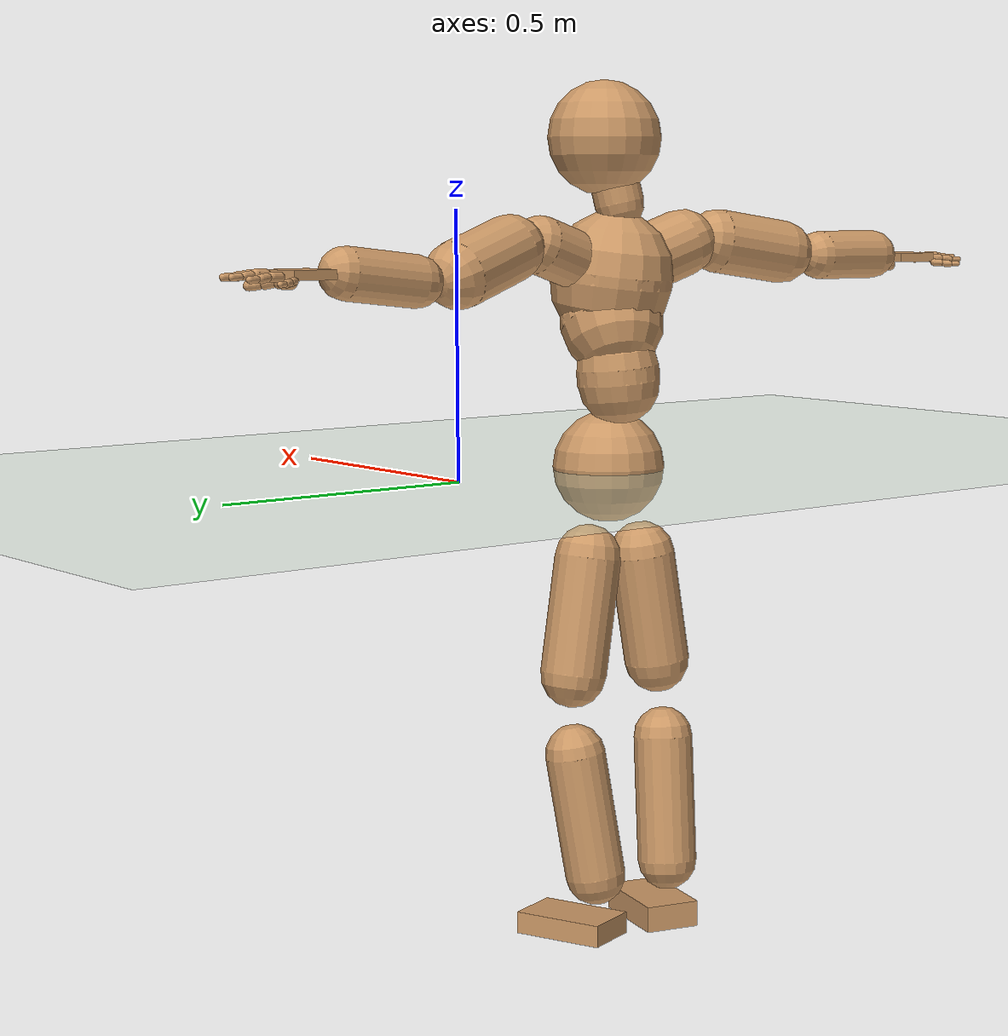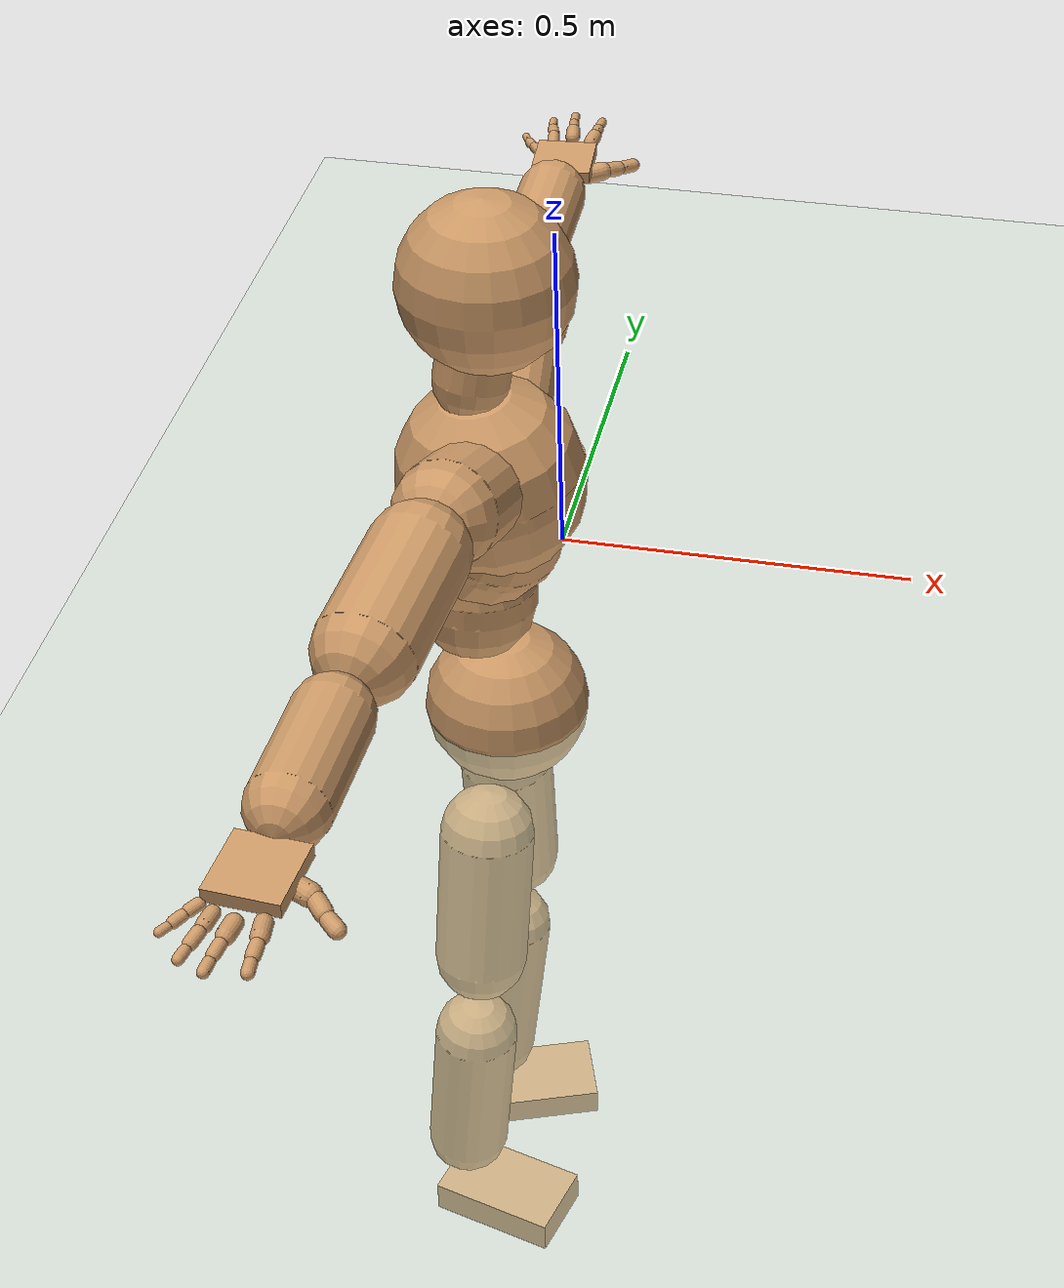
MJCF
<mujoco model="humanoid">
  <compiler coordinate="local" angle="radian"/>
  <default>
    <joint damping="0.0" armature="0.01" stiffness="0.0" limited="true"/>
    <geom conaffinity="1" condim="3" contype="7" margin="0.001" rgba="0.8 0.6 .4 1"/>
  </default>
  <asset>
    <texture type="skybox" builtin="gradient" rgb1=".4 .5 .6" rgb2="0 0 0" width="100" height="100"/>
    <texture builtin="flat" height="1278" mark="cross" markrgb="1 1 1" name="texgeom" random="0.01" rgb1="0.8 0.6 0.4" rgb2="0.8 0.6 0.4" type="cube" width="127"/>
    <texture builtin="checker" height="100" name="texplane" rgb1="0 0 0" rgb2="0.8 0.8 0.8" type="2d" width="100"/>
    <material name="MatPlane" reflectance="0.5" shininess="1" specular="1" texrepeat="60 60" texture="texplane"/>
    <material name="geom" texture="texgeom" texuniform="true"/>
  </asset>
  <worldbody>
    <light cutoff="100" diffuse="1 1 1" dir="-0 0 -1.3" directional="true" exponent="1" pos="0 0 1.3" specular=".1 .1 .1"/>
    <geom conaffinity="1" condim="3" name="floor" pos="0 0 0" rgba="0.8 0.9 0.8 1" size="100 100 .2" type="plane" material="MatPlane"/>
    <body name="Pelvis" pos="0.0015 -0.36 0.0038">
      <freejoint name="Pelvis"/>
      <geom type="sphere" contype="1" conaffinity="1" density="500" size="0.1086" pos="0.0000 0.0000 0.0000" name="Pelvis"/>
      <body name="L_Hip" pos="-0.0227 0.0585 -0.0945">
        <joint name="L_Hip_x" type="hinge" pos="0 0 0" axis="1 0 0" stiffness="800" damping="80" armature="0.02" range="-180.0000 180.0000"/>
        <joint name="L_Hip_y" type="hinge" pos="0 0 0" axis="0 1 0" stiffness="800" damping="80" armature="0.02" range="-180.0000 180.0000"/>
        <joint name="L_Hip_z" type="hinge" pos="0 0 0" axis="0 0 1" stiffness="800" damping="80" armature="0.02" range="-180.0000 180.0000"/>
        <geom type="capsule" contype="1" conaffinity="1" density="500" fromto="-0.0017 0.0135 -0.0748 -0.0066 0.0540 -0.2992" size="0.0639" name="L_Hip"/>
        <body name="L_Knee" pos="-0.0083 0.0675 -0.374">
          <joint name="L_Knee_x" type="hinge" pos="0 0 0" axis="1 0 0" stiffness="800" damping="80" armature="0.02" range="-180.0000 180.0000"/>
          <joint name="L_Knee_y" type="hinge" pos="0 0 0" axis="0 1 0" stiffness="800" damping="80" armature="0.02" range="-180.0000 180.0000"/>
          <joint name="L_Knee_z" type="hinge" pos="0 0 0" axis="0 0 1" stiffness="800" damping="80" armature="0.02" range="-180.0000 180.0000"/>
          <geom type="capsule" contype="1" conaffinity="1" density="500" fromto="-0.0086 -0.0095 -0.0796 -0.0345 -0.0382 -0.3184" size="0.0584" name="L_Knee"/>
          <body name="L_Ankle" pos="-0.0432 -0.0477 -0.398">
            <joint name="L_Ankle_x" type="hinge" pos="0 0 0" axis="1 0 0" stiffness="800" damping="80" armature="0.02" range="-180.0000 180.0000"/>
            <joint name="L_Ankle_y" type="hinge" pos="0 0 0" axis="0 1 0" stiffness="800" damping="80" armature="0.02" range="-180.0000 180.0000"/>
            <joint name="L_Ankle_z" type="hinge" pos="0 0 0" axis="0 0 1" stiffness="800" damping="80" armature="0.02" range="-180.0000 180.0000"/>
            <geom type="box" contype="1" conaffinity="1" density="500" pos="0.0654 0.0230 -0.0282" size="0.0917 0.0548 0.0213" quat="0.9858 0.0000 0.0000 0.1681" name="L_Ankle"/>
            <body name="L_Toe" pos="0.1308 0.046 -0.0563">
              <joint name="L_Toe_x" type="hinge" pos="0 0 0" axis="1 0 0" stiffness="500" damping="50" armature="0.02" range="-180.0000 180.0000"/>
              <joint name="L_Toe_y" type="hinge" pos="0 0 0" axis="0 1 0" stiffness="500" damping="50" armature="0.02" range="-180.0000 180.0000"/>
              <joint name="L_Toe_z" type="hinge" pos="0 0 0" axis="0 0 1" stiffness="500" damping="50" armature="0.02" range="-180.0000 180.0000"/>
              <geom type="box" contype="1" conaffinity="1" density="500" pos="0.0000 0.0000 0.0291" size="0.0011 0.0026 0.0011" quat="0.9850 0.0000 0.0000 0.1724" name="L_Toe"/>
            </body>
          </body>
        </body>
      </body>
      <body name="R_Hip" pos="-0.014 -0.061 -0.1055">
        <joint name="R_Hip_x" type="hinge" pos="0 0 0" axis="1 0 0" stiffness="800" damping="80" armature="0.02" range="-180.0000 180.0000"/>
        <joint name="R_Hip_y" type="hinge" pos="0 0 0" axis="0 1 0" stiffness="800" damping="80" armature="0.02" range="-180.0000 180.0000"/>
        <joint name="R_Hip_z" type="hinge" pos="0 0 0" axis="0 0 1" stiffness="800" damping="80" armature="0.02" range="-180.0000 180.0000"/>
        <geom type="capsule" contype="1" conaffinity="1" density="500" fromto="-0.0035 -0.0100 -0.0715 -0.0139 -0.0401 -0.2861" size="0.0639" name="R_Hip"/>
        <body name="R_Knee" pos="-0.0174 -0.0502 -0.3576">
          <joint name="R_Knee_x" type="hinge" pos="0 0 0" axis="1 0 0" stiffness="800" damping="80" armature="0.02" range="-180.0000 180.0000"/>
          <joint name="R_Knee_y" type="hinge" pos="0 0 0" axis="0 1 0" stiffness="800" damping="80" armature="0.02" range="-180.0000 180.0000"/>
          <joint name="R_Knee_z" type="hinge" pos="0 0 0" axis="0 0 1" stiffness="800" damping="80" armature="0.02" range="-180.0000 180.0000"/>
          <geom type="capsule" contype="1" conaffinity="1" density="500" fromto="-0.0085 0.0036 -0.0821 -0.0341 0.0142 -0.3284" size="0.0583" name="R_Knee"/>
          <body name="R_Ankle" pos="-0.0426 0.0178 -0.4105">
            <joint name="R_Ankle_x" type="hinge" pos="0 0 0" axis="1 0 0" stiffness="800" damping="80" armature="0.02" range="-180.0000 180.0000"/>
            <joint name="R_Ankle_y" type="hinge" pos="0 0 0" axis="0 1 0" stiffness="800" damping="80" armature="0.02" range="-180.0000 180.0000"/>
            <joint name="R_Ankle_z" type="hinge" pos="0 0 0" axis="0 0 1" stiffness="800" damping="80" armature="0.02" range="-180.0000 180.0000"/>
            <geom type="box" contype="1" conaffinity="1" density="500" pos="0.0688 -0.0182 -0.0276" size="0.0917 0.0548 0.0255" quat="0.9916 0.0000 0.0000 -0.1291" name="R_Ankle"/>
            <body name="R_Toe" pos="0.1376 -0.0364 -0.0552">
              <joint name="R_Toe_x" type="hinge" pos="0 0 0" axis="1 0 0" stiffness="500" damping="50" armature="0.02" range="-180.0000 180.0000"/>
              <joint name="R_Toe_y" type="hinge" pos="0 0 0" axis="0 1 0" stiffness="500" damping="50" armature="0.02" range="-180.0000 180.0000"/>
              <joint name="R_Toe_z" type="hinge" pos="0 0 0" axis="0 0 1" stiffness="500" damping="50" armature="0.02" range="-180.0000 180.0000"/>
              <geom type="box" contype="1" conaffinity="1" density="500" pos="0.0000 0.0000 0.0244" size="0.0011 0.0026 0.0011" quat="0.9927 0.0000 0.0000 -0.1207" name="R_Toe"/>
            </body>
          </body>
        </body>
      </body>
      <body name="Torso" pos="-0.0386 -0.0007 0.1058">
        <joint name="Torso_x" type="hinge" pos="0 0 0" axis="1 0 0" stiffness="1000" damping="100" armature="0.02" range="-180.0000 180.0000"/>
        <joint name="Torso_y" type="hinge" pos="0 0 0" axis="0 1 0" stiffness="1000" damping="100" armature="0.02" range="-180.0000 180.0000"/>
        <joint name="Torso_z" type="hinge" pos="0 0 0" axis="0 0 1" stiffness="1000" damping="100" armature="0.02" range="-180.0000 180.0000"/>
        <geom type="capsule" contype="1" conaffinity="1" density="500" fromto="0.0035 0.0074 0.0883 0.0023 0.0049 0.0589" size="0.0803" name="Torso"/>
        <body name="Spine" pos="0.0059 0.0123 0.1472">
          <joint name="Spine_x" type="hinge" pos="0 0 0" axis="1 0 0" stiffness="1000" damping="100" armature="0.02" range="-180.0000 180.0000"/>
          <joint name="Spine_y" type="hinge" pos="0 0 0" axis="0 1 0" stiffness="1000" damping="100" armature="0.02" range="-180.0000 180.0000"/>
          <joint name="Spine_z" type="hinge" pos="0 0 0" axis="0 0 1" stiffness="1000" damping="100" armature="0.02" range="-180.0000 180.0000"/>
          <geom type="capsule" contype="1" conaffinity="1" density="500" fromto="0.0190 -0.0062 0.0353 0.0127 -0.0041 0.0235" size="0.0997" name="Spine"/>
          <body name="Chest" pos="0.0317 -0.0103 0.0588">
            <joint name="Chest_x" type="hinge" pos="0 0 0" axis="1 0 0" stiffness="1000" damping="100" armature="0.02" range="-180.0000 180.0000"/>
            <joint name="Chest_y" type="hinge" pos="0 0 0" axis="0 1 0" stiffness="1000" damping="100" armature="0.02" range="-180.0000 180.0000"/>
            <joint name="Chest_z" type="hinge" pos="0 0 0" axis="0 0 1" stiffness="1000" damping="100" armature="0.02" range="-180.0000 180.0000"/>
            <geom type="capsule" contype="1" conaffinity="1" density="500" fromto="-0.0072 -0.0040 0.0626 -0.0048 -0.0027 0.0417" size="0.119" name="Chest"/>
            <body name="Neck" pos="-0.0291 -0.0128 0.1619">
              <joint name="Neck_x" type="hinge" pos="0 0 0" axis="1 0 0" stiffness="500" damping="50" armature="0.02" range="-180.0000 180.0000"/>
              <joint name="Neck_y" type="hinge" pos="0 0 0" axis="0 1 0" stiffness="500" damping="50" armature="0.02" range="-180.0000 180.0000"/>
              <joint name="Neck_z" type="hinge" pos="0 0 0" axis="0 0 1" stiffness="500" damping="50" armature="0.02" range="-180.0000 180.0000"/>
              <geom type="capsule" contype="1" conaffinity="1" density="500" fromto="0.0047 0.0053 0.0312 0.0188 0.0212 0.1249" size="0.0476" name="Neck"/>
              <body name="Head" pos="0.0235 0.0265 0.1562">
                <joint name="Head_x" type="hinge" pos="0 0 0" axis="1 0 0" stiffness="500" damping="50" armature="0.02" range="-180.0000 180.0000"/>
                <joint name="Head_y" type="hinge" pos="0 0 0" axis="0 1 0" stiffness="500" damping="50" armature="0.02" range="-180.0000 180.0000"/>
                <joint name="Head_z" type="hinge" pos="0 0 0" axis="0 0 1" stiffness="500" damping="50" armature="0.02" range="-180.0000 180.0000"/>
                <geom type="sphere" contype="1" conaffinity="1" density="500" size="0.1090" pos="0.0000 0.0000 0.0000" name="Head"/>
              </body>
            </body>
            <body name="L_Thorax" pos="-0.0022 0.0474 0.0752">
              <joint name="L_Thorax_x" type="hinge" pos="0 0 0" axis="1 0 0" stiffness="500" damping="50" armature="0.02" range="-180.0000 180.0000"/>
              <joint name="L_Thorax_y" type="hinge" pos="0 0 0" axis="0 1 0" stiffness="500" damping="50" armature="0.02" range="-180.0000 180.0000"/>
              <joint name="L_Thorax_z" type="hinge" pos="0 0 0" axis="0 0 1" stiffness="500" damping="50" armature="0.02" range="-180.0000 180.0000"/>
              <geom type="capsule" contype="1" conaffinity="1" density="500" fromto="-0.0027 0.0322 0.0105 -0.0107 0.1287 0.0421" size="0.0558" name="L_Thorax"/>
              <body name="L_Shoulder" pos="-0.0134 0.1609 0.0526">
                <joint name="L_Shoulder_x" type="hinge" pos="0 0 0" axis="1 0 0" stiffness="500" damping="50" armature="0.02" range="-180.0000 180.0000"/>
                <joint name="L_Shoulder_y" type="hinge" pos="0 0 0" axis="0 1 0" stiffness="500" damping="50" armature="0.02" range="-180.0000 180.0000"/>
                <joint name="L_Shoulder_z" type="hinge" pos="0 0 0" axis="0 0 1" stiffness="500" damping="50" armature="0.02" range="-180.0000 180.0000"/>
                <geom type="capsule" contype="1" conaffinity="1" density="500" fromto="-0.0113 0.0482 -0.0148 -0.0451 0.1927 -0.0591" size="0.0632" name="L_Shoulder"/>
                <body name="L_Elbow" pos="-0.0564 0.2408 -0.0739">
                  <joint name="L_Elbow_x" type="hinge" pos="0 0 0" axis="1 0 0" stiffness="500" damping="50" armature="0.02" range="-720.0000 720.0000"/>
                  <joint name="L_Elbow_y" type="hinge" pos="0 0 0" axis="0 1 0" stiffness="500" damping="50" armature="0.02" range="-720.0000 720.0000"/>
                  <joint name="L_Elbow_z" type="hinge" pos="0 0 0" axis="0 0 1" stiffness="500" damping="50" armature="0.02" range="-720.0000 720.0000"/>
                  <geom type="capsule" contype="1" conaffinity="1" density="500" fromto="0.0008 0.0496 0.0058 0.0031 0.1986 0.0234" size="0.0478" name="L_Elbow"/>
                  <body name="L_Wrist" pos="0.0038 0.2482 0.0292">
                    <joint name="L_Wrist_x" type="hinge" pos="0 0 0" axis="1 0 0" stiffness="300" damping="30" armature="0.02" range="-180.0000 180.0000"/>
                    <joint name="L_Wrist_y" type="hinge" pos="0 0 0" axis="0 1 0" stiffness="300" damping="30" armature="0.02" range="-180.0000 180.0000"/>
                    <joint name="L_Wrist_z" type="hinge" pos="0 0 0" axis="0 0 1" stiffness="300" damping="30" armature="0.02" range="-180.0000 180.0000"/>
                    <geom type="box" contype="1" conaffinity="1" density="500" pos="-0.0032 0.0419 -0.0054" size="0.0452 0.0425 0.0088" quat="0.7331 0.0000 0.0000 -0.6801" name="L_Wrist"/>
                    <body name="L_Index1" pos="0.0222 0.0992 -0.0072">
                      <joint name="L_Index1_x" type="hinge" pos="0 0 0" axis="1 0 0" stiffness="100" damping="10" armature="0.02" range="-180.0000 180.0000"/>
                      <joint name="L_Index1_y" type="hinge" pos="0 0 0" axis="0 1 0" stiffness="100" damping="10" armature="0.02" range="-180.0000 180.0000"/>
                      <joint name="L_Index1_z" type="hinge" pos="0 0 0" axis="0 0 1" stiffness="100" damping="10" armature="0.02" range="-180.0000 180.0000"/>
                      <geom type="capsule" contype="1" conaffinity="1" density="500" fromto="0.0008 0.0065 0.0004 0.0031 0.0261 0.0017" size="0.0103" name="L_Index1"/>
                      <body name="L_Index2" pos="0.0038 0.0326 0.0022">
                        <joint name="L_Index2_x" type="hinge" pos="0 0 0" axis="1 0 0" stiffness="100" damping="10" armature="0.02" range="-180.0000 180.0000"/>
                        <joint name="L_Index2_y" type="hinge" pos="0 0 0" axis="0 1 0" stiffness="100" damping="10" armature="0.02" range="-180.0000 180.0000"/>
                        <joint name="L_Index2_z" type="hinge" pos="0 0 0" axis="0 0 1" stiffness="100" damping="10" armature="0.02" range="-180.0000 180.0000"/>
                        <geom type="capsule" contype="1" conaffinity="1" density="500" fromto="-0.0001 0.0046 -0.0005 -0.0003 0.0183 -0.0021" size="0.0082" name="L_Index2"/>
                        <body name="L_Index3" pos="-0.0003 0.0229 -0.0026">
                          <joint name="L_Index3_x" type="hinge" pos="0 0 0" axis="1 0 0" stiffness="100" damping="10" armature="0.02" range="-180.0000 180.0000"/>
                          <joint name="L_Index3_y" type="hinge" pos="0 0 0" axis="0 1 0" stiffness="100" damping="10" armature="0.02" range="-180.0000 180.0000"/>
                          <joint name="L_Index3_z" type="hinge" pos="0 0 0" axis="0 0 1" stiffness="100" damping="10" armature="0.02" range="-180.0000 180.0000"/>
                          <geom type="capsule" contype="1" conaffinity="1" density="500" fromto="0.0003 0.0050 -0.0001 0.0013 0.0199 -0.0005" size="0.0069" name="L_Index3"/>
                        </body>
                      </body>
                    </body>
                    <body name="L_Middle1" pos="-0.004 0.1072 -0.0042">
                      <joint name="L_Middle1_x" type="hinge" pos="0 0 0" axis="1 0 0" stiffness="100" damping="10" armature="0.02" range="-180.0000 180.0000"/>
                      <joint name="L_Middle1_y" type="hinge" pos="0 0 0" axis="0 1 0" stiffness="100" damping="10" armature="0.02" range="-180.0000 180.0000"/>
                      <joint name="L_Middle1_z" type="hinge" pos="0 0 0" axis="0 0 1" stiffness="100" damping="10" armature="0.02" range="-180.0000 180.0000"/>
                      <geom type="capsule" contype="1" conaffinity="1" density="500" fromto="-0.0009 0.0062 0.0002 -0.0036 0.0250 0.0006" size="0.0104" name="L_Middle1"/>
                      <body name="L_Middle2" pos="-0.0045 0.0312 0.0008">
                        <joint name="L_Middle2_x" type="hinge" pos="0 0 0" axis="1 0 0" stiffness="100" damping="10" armature="0.02" range="-180.0000 180.0000"/>
                        <joint name="L_Middle2_y" type="hinge" pos="0 0 0" axis="0 1 0" stiffness="100" damping="10" armature="0.02" range="-180.0000 180.0000"/>
                        <joint name="L_Middle2_z" type="hinge" pos="0 0 0" axis="0 0 1" stiffness="100" damping="10" armature="0.02" range="-180.0000 180.0000"/>
                        <geom type="capsule" contype="1" conaffinity="1" density="500" fromto="-0.0009 0.0047 -0.0005 -0.0035 0.0190 -0.0021" size="0.0076" name="L_Middle2"/>
                        <body name="L_Middle3" pos="-0.0044 0.0237 -0.0026">
                          <joint name="L_Middle3_x" type="hinge" pos="0 0 0" axis="1 0 0" stiffness="100" damping="10" armature="0.02" range="-180.0000 180.0000"/>
                          <joint name="L_Middle3_y" type="hinge" pos="0 0 0" axis="0 1 0" stiffness="100" damping="10" armature="0.02" range="-180.0000 180.0000"/>
                          <joint name="L_Middle3_z" type="hinge" pos="0 0 0" axis="0 0 1" stiffness="100" damping="10" armature="0.02" range="-180.0000 180.0000"/>
                          <geom type="capsule" contype="1" conaffinity="1" density="500" fromto="-0.0005 0.0051 -0.0001 -0.0019 0.0206 -0.0005" size="0.0065" name="L_Middle3"/>
                        </body>
                      </body>
                    </body>
                    <body name="L_Pinky1" pos="-0.0489 0.0816 -0.014">
                      <joint name="L_Pinky1_x" type="hinge" pos="0 0 0" axis="1 0 0" stiffness="100" damping="10" armature="0.02" range="-180.0000 180.0000"/>
                      <joint name="L_Pinky1_y" type="hinge" pos="0 0 0" axis="0 1 0" stiffness="100" damping="10" armature="0.02" range="-180.0000 180.0000"/>
                      <joint name="L_Pinky1_z" type="hinge" pos="0 0 0" axis="0 0 1" stiffness="100" damping="10" armature="0.02" range="-180.0000 180.0000"/>
                      <geom type="capsule" contype="1" conaffinity="1" density="500" fromto="-0.0024 0.0034 -0.0004 -0.0097 0.0135 -0.0014" size="0.0073" name="L_Pinky1"/>
                      <body name="L_Pinky2" pos="-0.0121 0.0168 -0.0018">
                        <joint name="L_Pinky2_x" type="hinge" pos="0 0 0" axis="1 0 0" stiffness="100" damping="10" armature="0.02" range="-180.0000 180.0000"/>
                        <joint name="L_Pinky2_y" type="hinge" pos="0 0 0" axis="0 1 0" stiffness="100" damping="10" armature="0.02" range="-180.0000 180.0000"/>
                        <joint name="L_Pinky2_z" type="hinge" pos="0 0 0" axis="0 0 1" stiffness="100" damping="10" armature="0.02" range="-180.0000 180.0000"/>
                        <geom type="capsule" contype="1" conaffinity="1" density="500" fromto="-0.0022 0.0033 -0.0004 -0.0088 0.0132 -0.0017" size="0.0069" name="L_Pinky2"/>
                        <body name="L_Pinky3" pos="-0.011 0.0165 -0.0021">
                          <joint name="L_Pinky3_x" type="hinge" pos="0 0 0" axis="1 0 0" stiffness="100" damping="10" armature="0.02" range="-180.0000 180.0000"/>
                          <joint name="L_Pinky3_y" type="hinge" pos="0 0 0" axis="0 1 0" stiffness="100" damping="10" armature="0.02" range="-180.0000 180.0000"/>
                          <joint name="L_Pinky3_z" type="hinge" pos="0 0 0" axis="0 0 1" stiffness="100" damping="10" armature="0.02" range="-180.0000 180.0000"/>
                          <geom type="capsule" contype="1" conaffinity="1" density="500" fromto="-0.0018 0.0037 -0.0000 -0.0072 0.0148 -0.0001" size="0.0052" name="L_Pinky3"/>
                        </body>
                      </body>
                    </body>
                    <body name="L_Ring1" pos="-0.0304 0.0951 -0.0077">
                      <joint name="L_Ring1_x" type="hinge" pos="0 0 0" axis="1 0 0" stiffness="100" damping="10" armature="0.02" range="-180.0000 180.0000"/>
                      <joint name="L_Ring1_y" type="hinge" pos="0 0 0" axis="0 1 0" stiffness="100" damping="10" armature="0.02" range="-180.0000 180.0000"/>
                      <joint name="L_Ring1_z" type="hinge" pos="0 0 0" axis="0 0 1" stiffness="100" damping="10" armature="0.02" range="-180.0000 180.0000"/>
                      <geom type="capsule" contype="1" conaffinity="1" density="500" fromto="-0.0010 0.0058 0.0001 -0.0039 0.0232 0.0004" size="0.0088" name="L_Ring1"/>
                      <body name="L_Ring2" pos="-0.0049 0.029 0.0006">
                        <joint name="L_Ring2_x" type="hinge" pos="0 0 0" axis="1 0 0" stiffness="100" damping="10" armature="0.02" range="-180.0000 180.0000"/>
                        <joint name="L_Ring2_y" type="hinge" pos="0 0 0" axis="0 1 0" stiffness="100" damping="10" armature="0.02" range="-180.0000 180.0000"/>
                        <joint name="L_Ring2_z" type="hinge" pos="0 0 0" axis="0 0 1" stiffness="100" damping="10" armature="0.02" range="-180.0000 180.0000"/>
                        <geom type="capsule" contype="1" conaffinity="1" density="500" fromto="-0.0013 0.0047 -0.0005 -0.0053 0.0188 -0.0021" size="0.008" name="L_Ring2"/>
                        <body name="L_Ring3" pos="-0.0067 0.0234 -0.0026">
                          <joint name="L_Ring3_x" type="hinge" pos="0 0 0" axis="1 0 0" stiffness="100" damping="10" armature="0.02" range="-180.0000 180.0000"/>
                          <joint name="L_Ring3_y" type="hinge" pos="0 0 0" axis="0 1 0" stiffness="100" damping="10" armature="0.02" range="-180.0000 180.0000"/>
                          <joint name="L_Ring3_z" type="hinge" pos="0 0 0" axis="0 0 1" stiffness="100" damping="10" armature="0.02" range="-180.0000 180.0000"/>
                          <geom type="capsule" contype="1" conaffinity="1" density="500" fromto="-0.0009 0.0051 -0.0001 -0.0037 0.0204 -0.0005" size="0.0062" name="L_Ring3"/>
                        </body>
                      </body>
                    </body>
                    <body name="L_Thumb1" pos="0.0296 0.0363 -0.0206">
                      <joint name="L_Thumb1_x" type="hinge" pos="0 0 0" axis="1 0 0" stiffness="100" damping="10" armature="0.02" range="-180.0000 180.0000"/>
                      <joint name="L_Thumb1_y" type="hinge" pos="0 0 0" axis="0 1 0" stiffness="100" damping="10" armature="0.02" range="-180.0000 180.0000"/>
                      <joint name="L_Thumb1_z" type="hinge" pos="0 0 0" axis="0 0 1" stiffness="100" damping="10" armature="0.02" range="-180.0000 180.0000"/>
                      <geom type="capsule" contype="1" conaffinity="1" density="500" fromto="0.0056 0.0031 0.0005 0.0226 0.0123 0.0021" size="0.0135" name="L_Thumb1"/>
                      <body name="L_Thumb2" pos="0.0282 0.0154 0.0026">
                        <joint name="L_Thumb2_x" type="hinge" pos="0 0 0" axis="1 0 0" stiffness="100" damping="10" armature="0.02" range="-180.0000 180.0000"/>
                        <joint name="L_Thumb2_y" type="hinge" pos="0 0 0" axis="0 1 0" stiffness="100" damping="10" armature="0.02" range="-180.0000 180.0000"/>
                        <joint name="L_Thumb2_z" type="hinge" pos="0 0 0" axis="0 0 1" stiffness="100" damping="10" armature="0.02" range="-180.0000 180.0000"/>
                        <geom type="capsule" contype="1" conaffinity="1" density="500" fromto="0.0034 0.0038 -0.0011 0.0137 0.0153 -0.0043" size="0.0107" name="L_Thumb2"/>
                        <body name="L_Thumb3" pos="0.0172 0.0192 -0.0053">
                          <joint name="L_Thumb3_x" type="hinge" pos="0 0 0" axis="1 0 0" stiffness="100" damping="10" armature="0.02" range="-180.0000 180.0000"/>
                          <joint name="L_Thumb3_y" type="hinge" pos="0 0 0" axis="0 1 0" stiffness="100" damping="10" armature="0.02" range="-180.0000 180.0000"/>
                          <joint name="L_Thumb3_z" type="hinge" pos="0 0 0" axis="0 0 1" stiffness="100" damping="10" armature="0.02" range="-180.0000 180.0000"/>
                          <geom type="capsule" contype="1" conaffinity="1" density="500" fromto="0.0038 0.0042 -0.0007 0.0153 0.0169 -0.0027" size="0.0096" name="L_Thumb3"/>
                        </body>
                      </body>
                    </body>
                  </body>
                </body>
              </body>
            </body>
            <body name="R_Thorax" pos="-0.005 -0.0546 0.0759">
              <joint name="R_Thorax_x" type="hinge" pos="0 0 0" axis="1 0 0" stiffness="500" damping="50" armature="0.02" range="-180.0000 180.0000"/>
              <joint name="R_Thorax_y" type="hinge" pos="0 0 0" axis="0 1 0" stiffness="500" damping="50" armature="0.02" range="-180.0000 180.0000"/>
              <joint name="R_Thorax_z" type="hinge" pos="0 0 0" axis="0 0 1" stiffness="500" damping="50" armature="0.02" range="-180.0000 180.0000"/>
              <geom type="capsule" contype="1" conaffinity="1" density="500" fromto="-0.0033 -0.0296 0.0103 -0.0132 -0.1184 0.0412" size="0.0655" name="R_Thorax"/>
              <body name="R_Shoulder" pos="-0.0165 -0.148 0.0515">
                <joint name="R_Shoulder_x" type="hinge" pos="0 0 0" axis="1 0 0" stiffness="500" damping="50" armature="0.02" range="-180.0000 180.0000"/>
                <joint name="R_Shoulder_y" type="hinge" pos="0 0 0" axis="0 1 0" stiffness="500" damping="50" armature="0.02" range="-180.0000 180.0000"/>
                <joint name="R_Shoulder_z" type="hinge" pos="0 0 0" axis="0 0 1" stiffness="500" damping="50" armature="0.02" range="-180.0000 180.0000"/>
                <geom type="capsule" contype="1" conaffinity="1" density="500" fromto="-0.0073 -0.0518 -0.0079 -0.0292 -0.2071 -0.0317" size="0.0625" name="R_Shoulder"/>
                <body name="R_Elbow" pos="-0.0365 -0.2588 -0.0396">
                  <joint name="R_Elbow_x" type="hinge" pos="0 0 0" axis="1 0 0" stiffness="500" damping="50" armature="0.02" range="-720.0000 720.0000"/>
                  <joint name="R_Elbow_y" type="hinge" pos="0 0 0" axis="0 1 0" stiffness="500" damping="50" armature="0.02" range="-720.0000 720.0000"/>
                  <joint name="R_Elbow_z" type="hinge" pos="0 0 0" axis="0 0 1" stiffness="500" damping="50" armature="0.02" range="-720.0000 720.0000"/>
                  <geom type="capsule" contype="1" conaffinity="1" density="500" fromto="-0.0019 -0.0484 -0.0002 -0.0074 -0.1937 -0.0007" size="0.0488" name="R_Elbow"/>
                  <body name="R_Wrist" pos="-0.0093 -0.2421 -0.0008">
                    <joint name="R_Wrist_x" type="hinge" pos="0 0 0" axis="1 0 0" stiffness="300" damping="30" armature="0.02" range="-180.0000 180.0000"/>
                    <joint name="R_Wrist_y" type="hinge" pos="0 0 0" axis="0 1 0" stiffness="300" damping="30" armature="0.02" range="-180.0000 180.0000"/>
                    <joint name="R_Wrist_z" type="hinge" pos="0 0 0" axis="0 0 1" stiffness="300" damping="30" armature="0.02" range="-180.0000 180.0000"/>
                    <geom type="box" contype="1" conaffinity="1" density="500" pos="-0.0036 -0.0417 -0.0073" size="0.0452 0.0433 0.009" quat="0.7370 0.0000 0.0000 0.6759" name="R_Wrist"/>
                    <body name="R_Index1" pos="0.0213 -0.0986 -0.0111">
                      <joint name="R_Index1_x" type="hinge" pos="0 0 0" axis="1 0 0" stiffness="100" damping="10" armature="0.02" range="-180.0000 180.0000"/>
                      <joint name="R_Index1_y" type="hinge" pos="0 0 0" axis="0 1 0" stiffness="100" damping="10" armature="0.02" range="-180.0000 180.0000"/>
                      <joint name="R_Index1_z" type="hinge" pos="0 0 0" axis="0 0 1" stiffness="100" damping="10" armature="0.02" range="-180.0000 180.0000"/>
                      <geom type="capsule" contype="1" conaffinity="1" density="500" fromto="0.0008 -0.0065 0.0004 0.0031 -0.0261 0.0017" size="0.0103" name="R_Index1"/>
                      <body name="R_Index2" pos="0.0038 -0.0326 0.0022">
                        <joint name="R_Index2_x" type="hinge" pos="0 0 0" axis="1 0 0" stiffness="100" damping="10" armature="0.02" range="-180.0000 180.0000"/>
                        <joint name="R_Index2_y" type="hinge" pos="0 0 0" axis="0 1 0" stiffness="100" damping="10" armature="0.02" range="-180.0000 180.0000"/>
                        <joint name="R_Index2_z" type="hinge" pos="0 0 0" axis="0 0 1" stiffness="100" damping="10" armature="0.02" range="-180.0000 180.0000"/>
                        <geom type="capsule" contype="1" conaffinity="1" density="500" fromto="-0.0001 -0.0046 -0.0005 -0.0003 -0.0183 -0.0021" size="0.0082" name="R_Index2"/>
                        <body name="R_Index3" pos="-0.0003 -0.0229 -0.0026">
                          <joint name="R_Index3_x" type="hinge" pos="0 0 0" axis="1 0 0" stiffness="100" damping="10" armature="0.02" range="-180.0000 180.0000"/>
                          <joint name="R_Index3_y" type="hinge" pos="0 0 0" axis="0 1 0" stiffness="100" damping="10" armature="0.02" range="-180.0000 180.0000"/>
                          <joint name="R_Index3_z" type="hinge" pos="0 0 0" axis="0 0 1" stiffness="100" damping="10" armature="0.02" range="-180.0000 180.0000"/>
                          <geom type="capsule" contype="1" conaffinity="1" density="500" fromto="0.0003 -0.0042 -0.0001 0.0013 -0.0167 -0.0005" size="0.0072" name="R_Index3"/>
                        </body>
                      </body>
                    </body>
                    <body name="R_Middle1" pos="-0.0049 -0.1067 -0.008">
                      <joint name="R_Middle1_x" type="hinge" pos="0 0 0" axis="1 0 0" stiffness="100" damping="10" armature="0.02" range="-180.0000 180.0000"/>
                      <joint name="R_Middle1_y" type="hinge" pos="0 0 0" axis="0 1 0" stiffness="100" damping="10" armature="0.02" range="-180.0000 180.0000"/>
                      <joint name="R_Middle1_z" type="hinge" pos="0 0 0" axis="0 0 1" stiffness="100" damping="10" armature="0.02" range="-180.0000 180.0000"/>
                      <geom type="capsule" contype="1" conaffinity="1" density="500" fromto="-0.0009 -0.0062 0.0002 -0.0036 -0.0250 0.0006" size="0.0104" name="R_Middle1"/>
                      <body name="R_Middle2" pos="-0.0045 -0.0312 0.0008">
                        <joint name="R_Middle2_x" type="hinge" pos="0 0 0" axis="1 0 0" stiffness="100" damping="10" armature="0.02" range="-180.0000 180.0000"/>
                        <joint name="R_Middle2_y" type="hinge" pos="0 0 0" axis="0 1 0" stiffness="100" damping="10" armature="0.02" range="-180.0000 180.0000"/>
                        <joint name="R_Middle2_z" type="hinge" pos="0 0 0" axis="0 0 1" stiffness="100" damping="10" armature="0.02" range="-180.0000 180.0000"/>
                        <geom type="capsule" contype="1" conaffinity="1" density="500" fromto="-0.0009 -0.0047 -0.0005 -0.0035 -0.0190 -0.0021" size="0.0076" name="R_Middle2"/>
                        <body name="R_Middle3" pos="-0.0044 -0.0237 -0.0026">
                          <joint name="R_Middle3_x" type="hinge" pos="0 0 0" axis="1 0 0" stiffness="100" damping="10" armature="0.02" range="-180.0000 180.0000"/>
                          <joint name="R_Middle3_y" type="hinge" pos="0 0 0" axis="0 1 0" stiffness="100" damping="10" armature="0.02" range="-180.0000 180.0000"/>
                          <joint name="R_Middle3_z" type="hinge" pos="0 0 0" axis="0 0 1" stiffness="100" damping="10" armature="0.02" range="-180.0000 180.0000"/>
                          <geom type="capsule" contype="1" conaffinity="1" density="500" fromto="-0.0005 -0.0043 -0.0001 -0.0019 -0.0174 -0.0005" size="0.0068" name="R_Middle3"/>
                        </body>
                      </body>
                    </body>
                    <body name="R_Pinky1" pos="-0.0498 -0.081 -0.0179">
                      <joint name="R_Pinky1_x" type="hinge" pos="0 0 0" axis="1 0 0" stiffness="100" damping="10" armature="0.02" range="-180.0000 180.0000"/>
                      <joint name="R_Pinky1_y" type="hinge" pos="0 0 0" axis="0 1 0" stiffness="100" damping="10" armature="0.02" range="-180.0000 180.0000"/>
                      <joint name="R_Pinky1_z" type="hinge" pos="0 0 0" axis="0 0 1" stiffness="100" damping="10" armature="0.02" range="-180.0000 180.0000"/>
                      <geom type="capsule" contype="1" conaffinity="1" density="500" fromto="-0.0024 -0.0034 -0.0004 -0.0097 -0.0135 -0.0014" size="0.0073" name="R_Pinky1"/>
                      <body name="R_Pinky2" pos="-0.0121 -0.0168 -0.0018">
                        <joint name="R_Pinky2_x" type="hinge" pos="0 0 0" axis="1 0 0" stiffness="100" damping="10" armature="0.02" range="-180.0000 180.0000"/>
                        <joint name="R_Pinky2_y" type="hinge" pos="0 0 0" axis="0 1 0" stiffness="100" damping="10" armature="0.02" range="-180.0000 180.0000"/>
                        <joint name="R_Pinky2_z" type="hinge" pos="0 0 0" axis="0 0 1" stiffness="100" damping="10" armature="0.02" range="-180.0000 180.0000"/>
                        <geom type="capsule" contype="1" conaffinity="1" density="500" fromto="-0.0022 -0.0033 -0.0004 -0.0088 -0.0132 -0.0017" size="0.0069" name="R_Pinky2"/>
                        <body name="R_Pinky3" pos="-0.011 -0.0165 -0.0021">
                          <joint name="R_Pinky3_x" type="hinge" pos="0 0 0" axis="1 0 0" stiffness="100" damping="10" armature="0.02" range="-180.0000 180.0000"/>
                          <joint name="R_Pinky3_y" type="hinge" pos="0 0 0" axis="0 1 0" stiffness="100" damping="10" armature="0.02" range="-180.0000 180.0000"/>
                          <joint name="R_Pinky3_z" type="hinge" pos="0 0 0" axis="0 0 1" stiffness="100" damping="10" armature="0.02" range="-180.0000 180.0000"/>
                          <geom type="capsule" contype="1" conaffinity="1" density="500" fromto="-0.0018 -0.0029 -0.0000 -0.0072 -0.0116 -0.0001" size="0.0054" name="R_Pinky3"/>
                        </body>
                      </body>
                    </body>
                    <body name="R_Ring1" pos="-0.0313 -0.0946 -0.0116">
                      <joint name="R_Ring1_x" type="hinge" pos="0 0 0" axis="1 0 0" stiffness="100" damping="10" armature="0.02" range="-180.0000 180.0000"/>
                      <joint name="R_Ring1_y" type="hinge" pos="0 0 0" axis="0 1 0" stiffness="100" damping="10" armature="0.02" range="-180.0000 180.0000"/>
                      <joint name="R_Ring1_z" type="hinge" pos="0 0 0" axis="0 0 1" stiffness="100" damping="10" armature="0.02" range="-180.0000 180.0000"/>
                      <geom type="capsule" contype="1" conaffinity="1" density="500" fromto="-0.0010 -0.0058 0.0001 -0.0039 -0.0232 0.0004" size="0.0088" name="R_Ring1"/>
                      <body name="R_Ring2" pos="-0.0049 -0.029 0.0006">
                        <joint name="R_Ring2_x" type="hinge" pos="0 0 0" axis="1 0 0" stiffness="100" damping="10" armature="0.02" range="-180.0000 180.0000"/>
                        <joint name="R_Ring2_y" type="hinge" pos="0 0 0" axis="0 1 0" stiffness="100" damping="10" armature="0.02" range="-180.0000 180.0000"/>
                        <joint name="R_Ring2_z" type="hinge" pos="0 0 0" axis="0 0 1" stiffness="100" damping="10" armature="0.02" range="-180.0000 180.0000"/>
                        <geom type="capsule" contype="1" conaffinity="1" density="500" fromto="-0.0013 -0.0047 -0.0005 -0.0053 -0.0188 -0.0021" size="0.008" name="R_Ring2"/>
                        <body name="R_Ring3" pos="-0.0067 -0.0234 -0.0026">
                          <joint name="R_Ring3_x" type="hinge" pos="0 0 0" axis="1 0 0" stiffness="100" damping="10" armature="0.02" range="-180.0000 180.0000"/>
                          <joint name="R_Ring3_y" type="hinge" pos="0 0 0" axis="0 1 0" stiffness="100" damping="10" armature="0.02" range="-180.0000 180.0000"/>
                          <joint name="R_Ring3_z" type="hinge" pos="0 0 0" axis="0 0 1" stiffness="100" damping="10" armature="0.02" range="-180.0000 180.0000"/>
                          <geom type="capsule" contype="1" conaffinity="1" density="500" fromto="-0.0009 -0.0043 -0.0001 -0.0037 -0.0172 -0.0005" size="0.0064" name="R_Ring3"/>
                        </body>
                      </body>
                    </body>
                    <body name="R_Thumb1" pos="0.0287 -0.0357 -0.0244">
                      <joint name="R_Thumb1_x" type="hinge" pos="0 0 0" axis="1 0 0" stiffness="100" damping="10" armature="0.02" range="-180.0000 180.0000"/>
                      <joint name="R_Thumb1_y" type="hinge" pos="0 0 0" axis="0 1 0" stiffness="100" damping="10" armature="0.02" range="-180.0000 180.0000"/>
                      <joint name="R_Thumb1_z" type="hinge" pos="0 0 0" axis="0 0 1" stiffness="100" damping="10" armature="0.02" range="-180.0000 180.0000"/>
                      <geom type="capsule" contype="1" conaffinity="1" density="500" fromto="0.0056 -0.0031 0.0005 0.0226 -0.0123 0.0021" size="0.0135" name="R_Thumb1"/>
                      <body name="R_Thumb2" pos="0.0282 -0.0154 0.0026">
                        <joint name="R_Thumb2_x" type="hinge" pos="0 0 0" axis="1 0 0" stiffness="100" damping="10" armature="0.02" range="-180.0000 180.0000"/>
                        <joint name="R_Thumb2_y" type="hinge" pos="0 0 0" axis="0 1 0" stiffness="100" damping="10" armature="0.02" range="-180.0000 180.0000"/>
                        <joint name="R_Thumb2_z" type="hinge" pos="0 0 0" axis="0 0 1" stiffness="100" damping="10" armature="0.02" range="-180.0000 180.0000"/>
                        <geom type="capsule" contype="1" conaffinity="1" density="500" fromto="0.0034 -0.0038 -0.0011 0.0137 -0.0153 -0.0043" size="0.0107" name="R_Thumb2"/>
                        <body name="R_Thumb3" pos="0.0172 -0.0192 -0.0053">
                          <joint name="R_Thumb3_x" type="hinge" pos="0 0 0" axis="1 0 0" stiffness="100" damping="10" armature="0.02" range="-180.0000 180.0000"/>
                          <joint name="R_Thumb3_y" type="hinge" pos="0 0 0" axis="0 1 0" stiffness="100" damping="10" armature="0.02" range="-180.0000 180.0000"/>
                          <joint name="R_Thumb3_z" type="hinge" pos="0 0 0" axis="0 0 1" stiffness="100" damping="10" armature="0.02" range="-180.0000 180.0000"/>
                          <geom type="capsule" contype="1" conaffinity="1" density="500" fromto="0.0038 -0.0034 -0.0007 0.0153 -0.0137 -0.0027" size="0.0098" name="R_Thumb3"/>
                        </body>
                      </body>
                    </body>
                  </body>
                </body>
              </body>
            </body>
          </body>
        </body>
      </body>
    </body>
  </worldbody>
  <actuator>
    <motor name="L_Hip_x" joint="L_Hip_x" gear="500"/>
    <motor name="L_Hip_y" joint="L_Hip_y" gear="500"/>
    <motor name="L_Hip_z" joint="L_Hip_z" gear="500"/>
    <motor name="L_Knee_x" joint="L_Knee_x" gear="500"/>
    <motor name="L_Knee_y" joint="L_Knee_y" gear="500"/>
    <motor name="L_Knee_z" joint="L_Knee_z" gear="500"/>
    <motor name="L_Ankle_x" joint="L_Ankle_x" gear="500"/>
    <motor name="L_Ankle_y" joint="L_Ankle_y" gear="500"/>
    <motor name="L_Ankle_z" joint="L_Ankle_z" gear="500"/>
    <motor name="L_Toe_x" joint="L_Toe_x" gear="500"/>
    <motor name="L_Toe_y" joint="L_Toe_y" gear="500"/>
    <motor name="L_Toe_z" joint="L_Toe_z" gear="500"/>
    <motor name="R_Hip_x" joint="R_Hip_x" gear="500"/>
    <motor name="R_Hip_y" joint="R_Hip_y" gear="500"/>
    <motor name="R_Hip_z" joint="R_Hip_z" gear="500"/>
    <motor name="R_Knee_x" joint="R_Knee_x" gear="500"/>
    <motor name="R_Knee_y" joint="R_Knee_y" gear="500"/>
    <motor name="R_Knee_z" joint="R_Knee_z" gear="500"/>
    <motor name="R_Ankle_x" joint="R_Ankle_x" gear="500"/>
    <motor name="R_Ankle_y" joint="R_Ankle_y" gear="500"/>
    <motor name="R_Ankle_z" joint="R_Ankle_z" gear="500"/>
    <motor name="R_Toe_x" joint="R_Toe_x" gear="500"/>
    <motor name="R_Toe_y" joint="R_Toe_y" gear="500"/>
    <motor name="R_Toe_z" joint="R_Toe_z" gear="500"/>
    <motor name="Torso_x" joint="Torso_x" gear="500"/>
    <motor name="Torso_y" joint="Torso_y" gear="500"/>
    <motor name="Torso_z" joint="Torso_z" gear="500"/>
    <motor name="Spine_x" joint="Spine_x" gear="500"/>
    <motor name="Spine_y" joint="Spine_y" gear="500"/>
    <motor name="Spine_z" joint="Spine_z" gear="500"/>
    <motor name="Chest_x" joint="Chest_x" gear="500"/>
    <motor name="Chest_y" joint="Chest_y" gear="500"/>
    <motor name="Chest_z" joint="Chest_z" gear="500"/>
    <motor name="Neck_x" joint="Neck_x" gear="500"/>
    <motor name="Neck_y" joint="Neck_y" gear="500"/>
    <motor name="Neck_z" joint="Neck_z" gear="500"/>
    <motor name="Head_x" joint="Head_x" gear="500"/>
    <motor name="Head_y" joint="Head_y" gear="500"/>
    <motor name="Head_z" joint="Head_z" gear="500"/>
    <motor name="L_Thorax_x" joint="L_Thorax_x" gear="500"/>
    <motor name="L_Thorax_y" joint="L_Thorax_y" gear="500"/>
    <motor name="L_Thorax_z" joint="L_Thorax_z" gear="500"/>
    <motor name="L_Shoulder_x" joint="L_Shoulder_x" gear="500"/>
    <motor name="L_Shoulder_y" joint="L_Shoulder_y" gear="500"/>
    <motor name="L_Shoulder_z" joint="L_Shoulder_z" gear="500"/>
    <motor name="L_Elbow_x" joint="L_Elbow_x" gear="500"/>
    <motor name="L_Elbow_y" joint="L_Elbow_y" gear="500"/>
    <motor name="L_Elbow_z" joint="L_Elbow_z" gear="500"/>
    <motor name="L_Wrist_x" joint="L_Wrist_x" gear="500"/>
    <motor name="L_Wrist_y" joint="L_Wrist_y" gear="500"/>
    <motor name="L_Wrist_z" joint="L_Wrist_z" gear="500"/>
    <motor name="L_Index1_x" joint="L_Index1_x" gear="500"/>
    <motor name="L_Index1_y" joint="L_Index1_y" gear="500"/>
    <motor name="L_Index1_z" joint="L_Index1_z" gear="500"/>
    <motor name="L_Index2_x" joint="L_Index2_x" gear="500"/>
    <motor name="L_Index2_y" joint="L_Index2_y" gear="500"/>
    <motor name="L_Index2_z" joint="L_Index2_z" gear="500"/>
    <motor name="L_Index3_x" joint="L_Index3_x" gear="500"/>
    <motor name="L_Index3_y" joint="L_Index3_y" gear="500"/>
    <motor name="L_Index3_z" joint="L_Index3_z" gear="500"/>
    <motor name="L_Middle1_x" joint="L_Middle1_x" gear="500"/>
    <motor name="L_Middle1_y" joint="L_Middle1_y" gear="500"/>
    <motor name="L_Middle1_z" joint="L_Middle1_z" gear="500"/>
    <motor name="L_Middle2_x" joint="L_Middle2_x" gear="500"/>
    <motor name="L_Middle2_y" joint="L_Middle2_y" gear="500"/>
    <motor name="L_Middle2_z" joint="L_Middle2_z" gear="500"/>
    <motor name="L_Middle3_x" joint="L_Middle3_x" gear="500"/>
    <motor name="L_Middle3_y" joint="L_Middle3_y" gear="500"/>
    <motor name="L_Middle3_z" joint="L_Middle3_z" gear="500"/>
    <motor name="L_Pinky1_x" joint="L_Pinky1_x" gear="500"/>
    <motor name="L_Pinky1_y" joint="L_Pinky1_y" gear="500"/>
    <motor name="L_Pinky1_z" joint="L_Pinky1_z" gear="500"/>
    <motor name="L_Pinky2_x" joint="L_Pinky2_x" gear="500"/>
    <motor name="L_Pinky2_y" joint="L_Pinky2_y" gear="500"/>
    <motor name="L_Pinky2_z" joint="L_Pinky2_z" gear="500"/>
    <motor name="L_Pinky3_x" joint="L_Pinky3_x" gear="500"/>
    <motor name="L_Pinky3_y" joint="L_Pinky3_y" gear="500"/>
    <motor name="L_Pinky3_z" joint="L_Pinky3_z" gear="500"/>
    <motor name="L_Ring1_x" joint="L_Ring1_x" gear="500"/>
    <motor name="L_Ring1_y" joint="L_Ring1_y" gear="500"/>
    <motor name="L_Ring1_z" joint="L_Ring1_z" gear="500"/>
    <motor name="L_Ring2_x" joint="L_Ring2_x" gear="500"/>
    <motor name="L_Ring2_y" joint="L_Ring2_y" gear="500"/>
    <motor name="L_Ring2_z" joint="L_Ring2_z" gear="500"/>
    <motor name="L_Ring3_x" joint="L_Ring3_x" gear="500"/>
    <motor name="L_Ring3_y" joint="L_Ring3_y" gear="500"/>
    <motor name="L_Ring3_z" joint="L_Ring3_z" gear="500"/>
    <motor name="L_Thumb1_x" joint="L_Thumb1_x" gear="500"/>
    <motor name="L_Thumb1_y" joint="L_Thumb1_y" gear="500"/>
    <motor name="L_Thumb1_z" joint="L_Thumb1_z" gear="500"/>
    <motor name="L_Thumb2_x" joint="L_Thumb2_x" gear="500"/>
    <motor name="L_Thumb2_y" joint="L_Thumb2_y" gear="500"/>
    <motor name="L_Thumb2_z" joint="L_Thumb2_z" gear="500"/>
    <motor name="L_Thumb3_x" joint="L_Thumb3_x" gear="500"/>
    <motor name="L_Thumb3_y" joint="L_Thumb3_y" gear="500"/>
    <motor name="L_Thumb3_z" joint="L_Thumb3_z" gear="500"/>
    <motor name="R_Thorax_x" joint="R_Thorax_x" gear="500"/>
    <motor name="R_Thorax_y" joint="R_Thorax_y" gear="500"/>
    <motor name="R_Thorax_z" joint="R_Thorax_z" gear="500"/>
    <motor name="R_Shoulder_x" joint="R_Shoulder_x" gear="500"/>
    <motor name="R_Shoulder_y" joint="R_Shoulder_y" gear="500"/>
    <motor name="R_Shoulder_z" joint="R_Shoulder_z" gear="500"/>
    <motor name="R_Elbow_x" joint="R_Elbow_x" gear="500"/>
    <motor name="R_Elbow_y" joint="R_Elbow_y" gear="500"/>
    <motor name="R_Elbow_z" joint="R_Elbow_z" gear="500"/>
    <motor name="R_Wrist_x" joint="R_Wrist_x" gear="500"/>
    <motor name="R_Wrist_y" joint="R_Wrist_y" gear="500"/>
    <motor name="R_Wrist_z" joint="R_Wrist_z" gear="500"/>
    <motor name="R_Index1_x" joint="R_Index1_x" gear="500"/>
    <motor name="R_Index1_y" joint="R_Index1_y" gear="500"/>
    <motor name="R_Index1_z" joint="R_Index1_z" gear="500"/>
    <motor name="R_Index2_x" joint="R_Index2_x" gear="500"/>
    <motor name="R_Index2_y" joint="R_Index2_y" gear="500"/>
    <motor name="R_Index2_z" joint="R_Index2_z" gear="500"/>
    <motor name="R_Index3_x" joint="R_Index3_x" gear="500"/>
    <motor name="R_Index3_y" joint="R_Index3_y" gear="500"/>
    <motor name="R_Index3_z" joint="R_Index3_z" gear="500"/>
    <motor name="R_Middle1_x" joint="R_Middle1_x" gear="500"/>
    <motor name="R_Middle1_y" joint="R_Middle1_y" gear="500"/>
    <motor name="R_Middle1_z" joint="R_Middle1_z" gear="500"/>
    <motor name="R_Middle2_x" joint="R_Middle2_x" gear="500"/>
    <motor name="R_Middle2_y" joint="R_Middle2_y" gear="500"/>
    <motor name="R_Middle2_z" joint="R_Middle2_z" gear="500"/>
    <motor name="R_Middle3_x" joint="R_Middle3_x" gear="500"/>
    <motor name="R_Middle3_y" joint="R_Middle3_y" gear="500"/>
    <motor name="R_Middle3_z" joint="R_Middle3_z" gear="500"/>
    <motor name="R_Pinky1_x" joint="R_Pinky1_x" gear="500"/>
    <motor name="R_Pinky1_y" joint="R_Pinky1_y" gear="500"/>
    <motor name="R_Pinky1_z" joint="R_Pinky1_z" gear="500"/>
    <motor name="R_Pinky2_x" joint="R_Pinky2_x" gear="500"/>
    <motor name="R_Pinky2_y" joint="R_Pinky2_y" gear="500"/>
    <motor name="R_Pinky2_z" joint="R_Pinky2_z" gear="500"/>
    <motor name="R_Pinky3_x" joint="R_Pinky3_x" gear="500"/>
    <motor name="R_Pinky3_y" joint="R_Pinky3_y" gear="500"/>
    <motor name="R_Pinky3_z" joint="R_Pinky3_z" gear="500"/>
    <motor name="R_Ring1_x" joint="R_Ring1_x" gear="500"/>
    <motor name="R_Ring1_y" joint="R_Ring1_y" gear="500"/>
    <motor name="R_Ring1_z" joint="R_Ring1_z" gear="500"/>
    <motor name="R_Ring2_x" joint="R_Ring2_x" gear="500"/>
    <motor name="R_Ring2_y" joint="R_Ring2_y" gear="500"/>
    <motor name="R_Ring2_z" joint="R_Ring2_z" gear="500"/>
    <motor name="R_Ring3_x" joint="R_Ring3_x" gear="500"/>
    <motor name="R_Ring3_y" joint="R_Ring3_y" gear="500"/>
    <motor name="R_Ring3_z" joint="R_Ring3_z" gear="500"/>
    <motor name="R_Thumb1_x" joint="R_Thumb1_x" gear="500"/>
    <motor name="R_Thumb1_y" joint="R_Thumb1_y" gear="500"/>
    <motor name="R_Thumb1_z" joint="R_Thumb1_z" gear="500"/>
    <motor name="R_Thumb2_x" joint="R_Thumb2_x" gear="500"/>
    <motor name="R_Thumb2_y" joint="R_Thumb2_y" gear="500"/>
    <motor name="R_Thumb2_z" joint="R_Thumb2_z" gear="500"/>
    <motor name="R_Thumb3_x" joint="R_Thumb3_x" gear="500"/>
    <motor name="R_Thumb3_y" joint="R_Thumb3_y" gear="500"/>
    <motor name="R_Thumb3_z" joint="R_Thumb3_z" gear="500"/>
  </actuator>
  <contact>
    <exclude body1="Torso" body2="Chest"/>
    <exclude body1="Head" body2="Chest"/>
    <exclude body1="R_Knee" body2="R_Toe"/>
    <exclude body1="R_Knee" body2="L_Ankle"/>
    <exclude body1="R_Knee" body2="L_Toe"/>
    <exclude body1="L_Knee" body2="L_Toe"/>
    <exclude body1="L_Knee" body2="R_Ankle"/>
    <exclude body1="L_Knee" body2="R_Toe"/>
    <exclude body1="L_Shoulder" body2="Chest"/>
    <exclude body1="R_Shoulder" body2="Chest"/>
  </contact>
  <sensor/>
  <size njmax="700" nconmax="700"/>
</mujoco>
